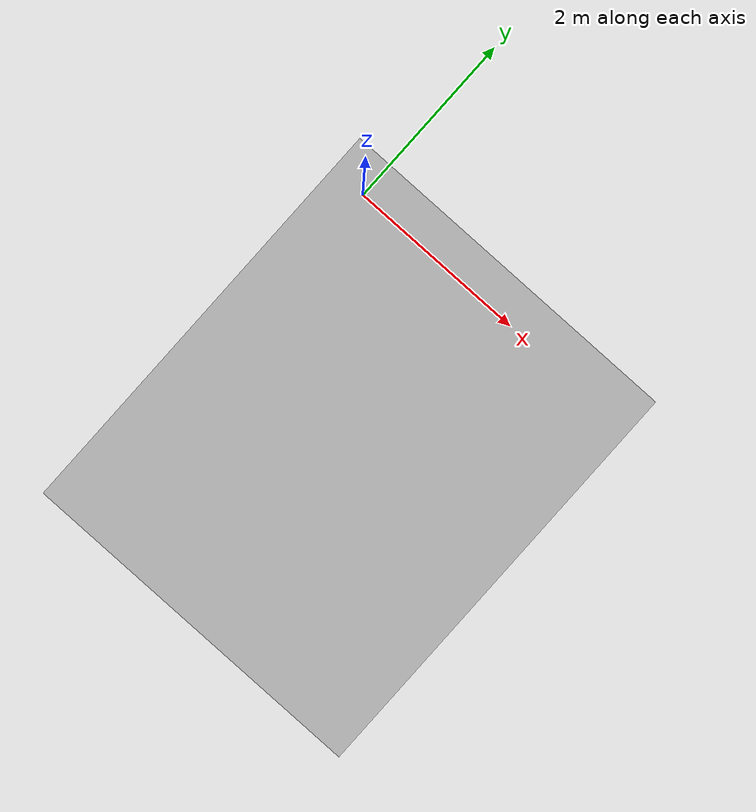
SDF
<?xml version="1.0" ?>
<sdf version="1.5">
  <model name="first_ground">
    <static>true</static>
    <link name="link">
      <collision name="collision">
        <geometry>
          <box>
            <size>4 4.8 .1</size>
          </box>
        </geometry>
      </collision>
      <visual name="visual">
        <pose>1.6 -2 0 0 0 0</pose>
        <cast_shadows>false</cast_shadows>
        <geometry>
          <box>
            <size>4 4.8 .1</size>
          </box>
        </geometry>
        <material>
          <script>
            <uri>model://first_ground/materials/scripts</uri>
            <uri>model://first_ground/materials/textures</uri>
            <name>my/first_ground</name>
          </script>
          <!-- 设置纹理不重复 -->
          <texture>
            <repeat>1 1</repeat> <!-- 将纹理重复设置为1x1，即不重复 -->
          </texture>
        </material>
      </visual>
    </link>
  </model>
</sdf>
